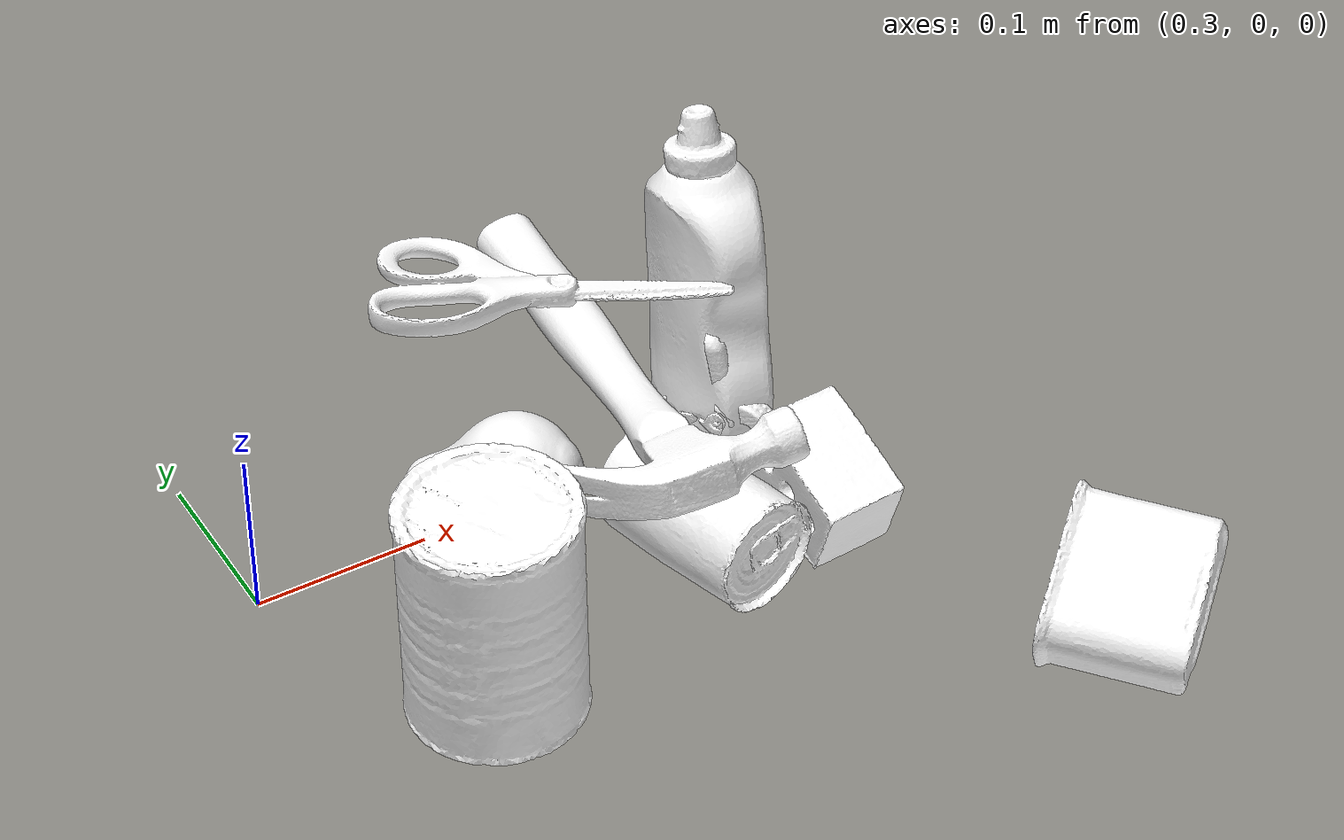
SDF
<sdf version="1.6">
  <world name="default">
  <gravity>0 0 -9.8</gravity>

    <model name="YcbFoamBrick">
      <pose frame=''> 0.6277 -0.0538 -0.0002 3.1285 -1.5099 -3.1123</pose>
      <link name="baselink">
        <contact>
          <lateral_friction>0.5</lateral_friction>
          <rolling_friction>0.0</rolling_friction>
          <contact_cfm>0.0</contact_cfm>
          <contact_erp>1.0</contact_erp>
        </contact>
        <inertial>
          <pose frame=''>-0.013 -0.005 -0.0 0 0 -0.35</pose>
          <mass>0.028</mass>
          <inertia>
            <ixx>1e-3</ixx>
            <ixy>0</ixy>
            <ixz>0</ixz>
            <iyy>1e-3</iyy>
            <iyz>0</iyz>
            <izz>1e-3</izz>
          </inertia>
        </inertial>
        <visual name="visual">
          <geometry>
            <mesh>
              <scale>1 1 1</scale>
              <uri>../ycb_objects/YcbFoamBrick/textured_simple_reoriented.obj</uri>
            </mesh>
          </geometry>
          <material>
            <ambient>1 1 1 1</ambient>
            <diffuse>1.00000 1.00000 1.000000 1</diffuse>
            <specular>.5 .5 .5 1</specular>
            <emissive>0 0 0 0</emissive>
          </material>
        </visual>
        <collision name="collision">
          <geometry>
            <mesh>
              <scale>1 1 1</scale>
              <uri>../ycb_objects/YcbFoamBrick/collision_vhacd.obj</uri>
            </mesh>
          </geometry>
        </collision>
      </link>
    </model>

    <model name="YcbScissors">
      <pose frame=''>0.4977  0.0606 -0.0124 -0.1087  0.1218 -0.3397</pose>
      <link name="baselink">
      <contact>
        <lateral_friction>0.6</lateral_friction>
        <rolling_friction>0.001</rolling_friction>
        <spinning_friction>0.001</spinning_friction>
        <contact_cfm>0.0</contact_cfm>
        <contact_erp>1.0</contact_erp>
      </contact>
        <inertial>
        <pose frame=''>0.0 -0.005 0.1 0.0 0.0 0.0</pose>
            <mass>0.082</mass>
            <inertia>
                <ixx>1e-3</ixx>
                <ixy>0</ixy>
                <ixz>0</ixz>
                <iyy>1e-3</iyy>
                <iyz>0</iyz>
                <izz>1e-3</izz>
            </inertia>
        </inertial>
        <visual name="visual">
            <geometry>
                <mesh>
                    <scale>1 1 1</scale>
                    <uri>../ycb_objects/YcbScissors/textured_simple_reoriented.obj</uri>
                </mesh>
            </geometry>
            <material>
              <ambient>1 1 1 1</ambient>
              <diffuse>1.00000 1.00000 1.000000 1</diffuse>
              <specular>.5 .5 .5 1</specular>
              <emissive>0 0 0 0</emissive>
            </material>
        </visual>
        <collision name="collision">
            <geometry>
                <mesh>
                    <scale>1 1 1</scale>
                    <uri>../ycb_objects/YcbScissors/collision_vhacd.obj</uri>
                </mesh>
            </geometry>
        </collision>
      </link>
    </model>

    <model name="YcbMustardBottle">
      <pose frame=''>0.607  0.0605 0.0468 0.0517 0.2233 1.4574</pose>
      <link name="baselink">
        <contact>
          <lateral_friction>0.8</lateral_friction>
          <spinning_friction>0.001</spinning_friction>
          <rolling_friction>0.001</rolling_friction>
          <contact_cfm>0.0</contact_cfm>
          <contact_erp>1.0</contact_erp>
        </contact>
        <inertial>
          <pose frame=''>0.005 -0.005 -0.015 0 0 0.1</pose>
          <mass>0.603</mass>
          <inertia>
            <ixx>1e-3</ixx>
            <ixy>0</ixy>
            <ixz>0</ixz>
            <iyy>1e-3</iyy>
            <iyz>0</iyz>
            <izz>1e-3</izz>
          </inertia>
        </inertial>
        <visual name="visual">
          <geometry>
            <mesh>
              <scale>1 1 1</scale>
              <uri>../ycb_objects/YcbMustardBottle/textured_simple_reoriented.obj</uri>
            </mesh>
          </geometry>
          <material>
            <ambient>1 1 1 1</ambient>
            <diffuse>1.00000 1.00000 1.000000 1</diffuse>
            <specular>.5 .5 .5 1</specular>
            <emissive>0 0 0 0</emissive>
          </material>
        </visual>
        <collision name="collision">
          <geometry>
            <mesh>
              <scale>1 1 1</scale>
              <uri>../ycb_objects/YcbMustardBottle/collision_vhacd.obj</uri>
            </mesh>
          </geometry>
        </collision>
      </link>
    </model>

    <model name="YcbPear">
      <pose frame=''>0.4511 -0.0215 -0.0014  0.3728  0.164  -2.1688</pose>
      <link name="baselink">
        <contact>
          <lateral_friction>0.6</lateral_friction>
          <rolling_friction>0.001</rolling_friction>
          <spinning_friction>0.001</spinning_friction>
          <contact_cfm>0.0</contact_cfm>
          <contact_erp>1.0</contact_erp>
        </contact>
        <inertial>
          <pose frame=''>0 0.005 0.04 0.0 0.0 0.0</pose>
            <mass>0.049</mass>
            <inertia>
                <ixx>1e-3</ixx>
                <ixy>0</ixy>
                <ixz>0</ixz>
                <iyy>1e-3</iyy>
                <iyz>0</iyz>
                <izz>1e-3</izz>
            </inertia>
        </inertial>
        <visual name="visual">
            <geometry>
                <mesh>
                    <scale>1 1 1</scale>
                    <uri>../ycb_objects/YcbPear/textured_reoriented.obj</uri>
                </mesh>
            </geometry>
            <material>
      				<ambient>1 1 1 1</ambient>
      				<diffuse>1.00000 1.00000 1.000000 1</diffuse>
      				<specular>.5 .5 .5 1</specular>
      				<emissive>0 0 0 0</emissive>
      			</material>
        </visual>
        <collision name="collision">
            <geometry>
                <mesh>
                    <scale>1 1 1</scale>
                    <uri>../ycb_objects/YcbPear/collision_vhacd.obj</uri>
                </mesh>
            </geometry>
        </collision>
      </link>
  	</model>

    <model name="YcbTomatoSoupCan">
      <pose frame=''>0.532  -0.0754  0.002  1.5708 0.1947 0.2698</pose>
      <link name="baselink">
      <contact>
        <lateral_friction>0.6</lateral_friction>
        <rolling_friction>0.001</rolling_friction>
        <spinning_friction>0.001</spinning_friction>
        <contact_cfm>0.0</contact_cfm>
        <contact_erp>1.0</contact_erp>
      </contact>
          <inertial>
        <pose frame=''>0 0.0 -0.02 0.0 0.0 0.0</pose>
              <mass>0.349</mass>
              <inertia>
                  <ixx>1e-3</ixx>
                  <ixy>0</ixy>
                  <ixz>0</ixz>
                  <iyy>1e-3</iyy>
                  <iyz>0</iyz>
                  <izz>1e-3</izz>
              </inertia>
          </inertial>
          <visual name="visual">
              <geometry>
                  <mesh>
                      <scale>1 1 1</scale>
                      <uri>../ycb_objects/YcbTomatoSoupCan/textured_simple_reoriented.obj</uri>
                  </mesh>
              </geometry>
              <material>
                <ambient>1 1 1 1</ambient>
                <diffuse>1.00000 1.00000 1.000000 1</diffuse>
                <specular>.5 .5 .5 1</specular>
                <emissive>0 0 0 0</emissive>
              </material>
          </visual>
          <collision name="collision">
              <geometry>
                  <mesh>
                      <scale>1 1 1</scale>
                      <uri>../ycb_objects/YcbTomatoSoupCan/collision_vhacd.obj</uri>
                  </mesh>
              </geometry>
          </collision>
        </link>
    </model>

    <model name="YcbMasterChefCan">
        <pose frame=''>0.3975 -0.0695  0.0272 -0.      0.      2.5642</pose>
        <link name="baselink">
        <contact>
          <lateral_friction>0.5</lateral_friction>
          <rolling_friction>0.001</rolling_friction>
          <spinning_friction>0.001</spinning_friction>
          <contact_cfm>0.0</contact_cfm>
          <contact_erp>1.0</contact_erp>
        </contact>
          <inertial>
          <pose frame=''>-0.005 0.013 0.0 0.0 0.0 0.0</pose>
              <mass>0.404</mass>
              <inertia>
                  <ixx>1e-3</ixx>
                  <ixy>0</ixy>
                  <ixz>0</ixz>
                  <iyy>1e-3</iyy>
                  <iyz>0</iyz>
                  <izz>1e-3</izz>
              </inertia>
          </inertial>
          <visual name="visual">
              <geometry>
                  <mesh>
                      <scale>1 1 1</scale>
                      <uri>../ycb_objects/YcbMasterChefCan/textured_simple_reoriented.obj</uri>
                  </mesh>
              </geometry>
              <material>
        				<ambient>1 1 1 1</ambient>
        				<diffuse>1.00000 1.00000 1.000000 1</diffuse>
        				<specular>.5 .5 .5 1</specular>
        				<emissive>0 0 0 0</emissive>
        			</material>
          </visual>
          <collision name="collision">
              <geometry>
                  <mesh>
                      <scale>1 1 1</scale>
                      <uri>../ycb_objects/YcbMasterChefCan/collision_vhacd.obj</uri>
                  </mesh>
              </geometry>
          </collision>
        </link>
    </model>

    <model name="YcbMediumClamp">
      <pose frame=''>0.5692 -0.0106 -0.0056 -1.4819  0.5382 -0.841</pose>
      <link name="baselink">
        <contact>
          <lateral_friction>0.6</lateral_friction>
          <rolling_friction>0.001</rolling_friction>
          <spinning_friction>0.001</spinning_friction>
          <contact_cfm>0.0</contact_cfm>
          <contact_erp>1.0</contact_erp>
        </contact>
        <inertial>
          <pose frame=''>0.02 0.009 0.04 -0.1 0 0.0</pose>
            <mass>0.059</mass>
            <inertia>
                <ixx>1e-3</ixx>
                <ixy>0</ixy>
                <ixz>0</ixz>
                <iyy>1e-3</iyy>
                <iyz>0</iyz>
                <izz>1e-3</izz>
            </inertia>
        </inertial>
        <visual name="visual">
            <geometry>
                <mesh>
                    <scale>1 1 1</scale>
                    <uri>../ycb_objects/YcbMediumClamp/textured_reoriented.obj</uri>
                </mesh>
            </geometry>
            <material>
      				<ambient>1 1 1 1</ambient>
      				<diffuse>1.00000 1.00000 1.000000 1</diffuse>
      				<specular>.5 .5 .5 1</specular>
      				<emissive>0 0 0 0</emissive>
      			</material>
        </visual>
        <collision name="collision">
            <geometry>
                <mesh>
                    <scale>1 1 1</scale>
                    <uri>../ycb_objects/YcbMediumClamp/collision_vhacd.obj</uri>
                </mesh>
            </geometry>
        </collision>
      </link>
  	</model>

    <model name="YcbHammer">
      <pose frame=''>0.5176 0.0474 0.0256 -0.2368 -0.1205 -0.0188</pose>
      <link name="baselink">
        <contact>
          <lateral_friction>0.3</lateral_friction>
          <rolling_friction>0.001</rolling_friction>
          <contact_cfm>0.0</contact_cfm>
          <contact_erp>1.0</contact_erp>
        </contact>
        <inertial>
          <pose frame=''>0.02 -0.01 0.01 0.0 0.0 0.0</pose>
            <mass>0.665</mass>
            <inertia>
                <ixx>1e-3</ixx>
                <ixy>0</ixy>
                <ixz>0</ixz>
                <iyy>1e-3</iyy>
                <iyz>0</iyz>
                <izz>1e-3</izz>
            </inertia>
        </inertial>
        <visual name="visual">
            <geometry>
                <mesh>
                    <scale>1 1 1</scale>
                    <uri>../ycb_objects/YcbHammer/textured_reoriented.obj</uri>
                </mesh>
            </geometry>
            <material>
      				<ambient>1 1 1 1</ambient>
      				<diffuse>1.00000 1.00000 1.000000 1</diffuse>
      				<specular>.5 .5 .5 1</specular>
      				<emissive>0 0 0 0</emissive>
      			</material>
        </visual>
        <collision name="collision">
            <geometry>
                <mesh>
                    <scale>1 1 1</scale>
                    <uri>../ycb_objects/YcbHammer/collision_vhacd.obj</uri>
                </mesh>
            </geometry>
        </collision>
      </link>
  	</model>

    <model name="YcbStrawberry">
      <pose frame=''>0.4767  0.0236 -0.0044  0.5056 -0.6955  1.2714</pose>
      <link name="baselink">
        <contact>
          <lateral_friction>0.5</lateral_friction>
          <rolling_friction>0.001</rolling_friction>
          <spinning_friction>0.001</spinning_friction>
          <contact_cfm>0.0</contact_cfm>
          <contact_erp>1.0</contact_erp>
        </contact>
        <inertial>
          <pose frame=''>-0.005 0.005 0.02 0.0 0.0 0.0</pose>
            <mass>0.018</mass>
            <inertia>
                <ixx>1e-3</ixx>
                <ixy>0</ixy>
                <ixz>0</ixz>
                <iyy>1e-3</iyy>
                <iyz>0</iyz>
                <izz>1e-3</izz>
            </inertia>
        </inertial>
        <visual name="visual">
            <geometry>
                <mesh>
                    <scale>1 1 1</scale>
                    <uri>../ycb_objects/YcbStrawberry/textured_reoriented.obj</uri>
                </mesh>
            </geometry>
            <material>
      				<ambient>1 1 1 1</ambient>
      				<diffuse>1.00000 1.00000 1.000000 1</diffuse>
      				<specular>.5 .5 .5 1</specular>
      				<emissive>0 0 0 0</emissive>
      			</material>
        </visual>
        <collision name="collision">
            <geometry>
                <mesh>
                    <scale>1 1 1</scale>
                    <uri>../ycb_objects/YcbStrawberry/collision_vhacd.obj</uri>
                </mesh>
            </geometry>
        </collision>
      </link>
  	</model>

    <model name="YcbPottedMeatCan">
      <pose frame=''>0.7102 -0.2146  0.0029 -1.5334  0.0851  0.7409</pose>
      <link name="baselink">
         <contact>
          <lateral_friction>0.6</lateral_friction>
          <rolling_friction>0.0</rolling_friction>
          <contact_cfm>0.0</contact_cfm>
          <contact_erp>1.0</contact_erp>
        </contact>
        <inertial>
          <pose frame=''>0 0.012 -0.01 0 0 -0.5</pose>
          <mass>0.370</mass>
          <inertia>
            <ixx>1e-3</ixx>
            <ixy>0</ixy>
            <ixz>0</ixz>
            <iyy>1e-3</iyy>
            <iyz>0</iyz>
            <izz>1e-3</izz>
          </inertia>
        </inertial>
        <visual name="visual">
          <geometry>
            <mesh>
              <scale>1 1 1</scale>
              <uri>../ycb_objects/YcbPottedMeatCan/textured_simple_reoriented.obj</uri>
            </mesh>
          </geometry>
          <material>
            <ambient>1 1 1 1</ambient>
            <diffuse>1.00000 1.00000 1.000000 1</diffuse>
            <specular>.5 .5 .5 1</specular>
            <emissive>0 0 0 0</emissive>
          </material>
        </visual>
        <collision name="collision">
          <geometry>
            <mesh>
              <scale>1 1 1</scale>
              <uri>../ycb_objects/YcbPottedMeatCan/collision_vhacd.obj</uri>
            </mesh>
          </geometry>
        </collision>
      </link>
    </model>

  </world>
</sdf>
